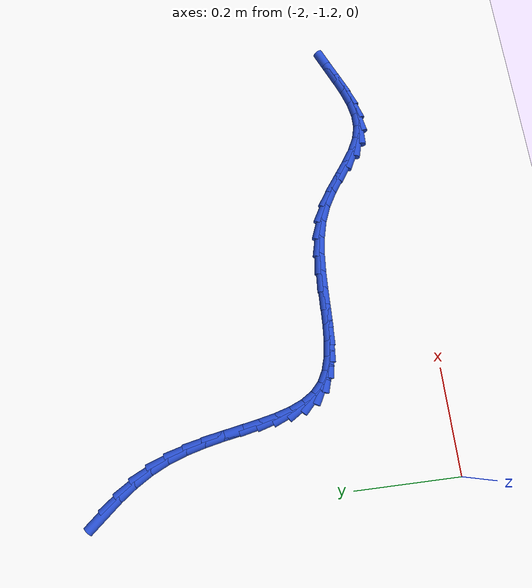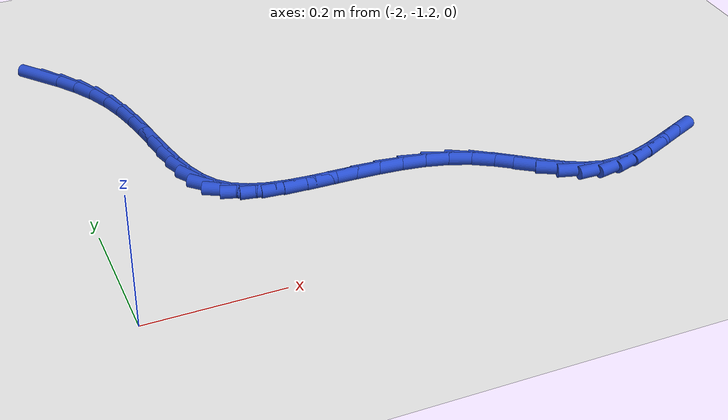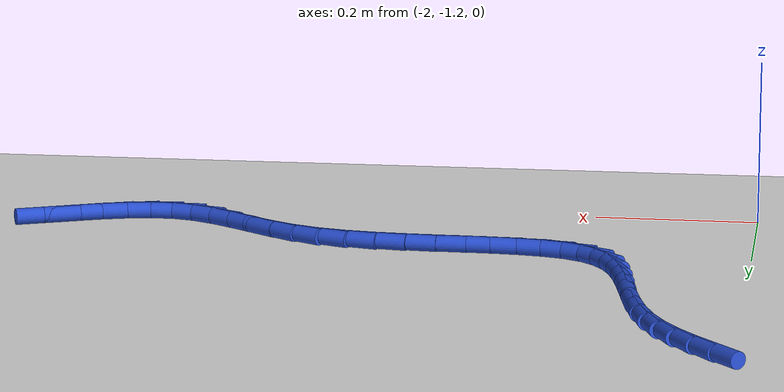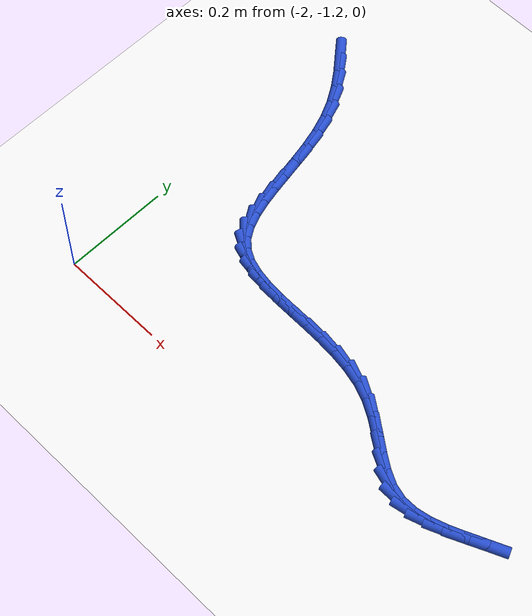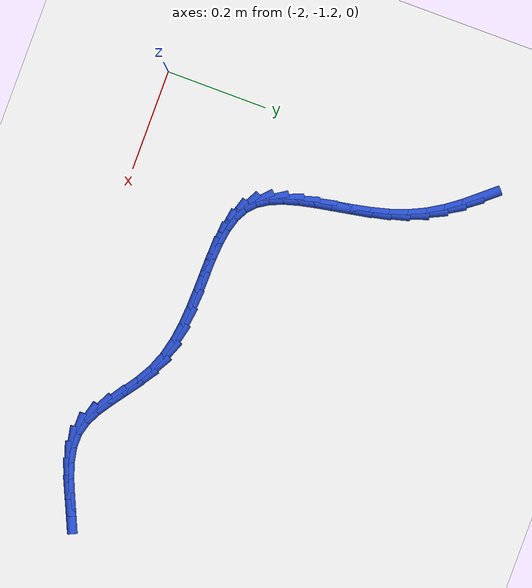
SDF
<sdf version="1.6">
 <world name="default">
  <model name="ground_plane">
   <static>1</static>
   <link name="link">
    <collision name="collision">
     <geometry><plane><normal>0 0 1</normal><size>100 100</size></plane></geometry>
     <surface><friction><ode><mu>100</mu><mu2>50</mu2></ode></friction></surface>
    </collision>
    <visual name="visual">
     <cast_shadows>0</cast_shadows>
     <geometry><plane><normal>0 0 1</normal><size>100 100</size></plane></geometry>
     <material>
      <script><uri>file://media/materials/scripts/gazebo.material</uri><name>Gazebo/WhiteGlow</name></script>
     </material>
    </visual>
   </link>
  </model>
  <model name="line">
   <link name="link_130">
    <pose>-1.9802966200586152 -0.5491466870681517 0.01 0 1.57 -0.868888062633061</pose>
    <collision name="collision">
     <geometry><cylinder><radius>0.01</radius><length>0.08</length></cylinder></geometry>
    </collision>
    <visual name="visual">
     <material>
      <script><name>Gazebo/Blue</name><uri>file://media/materials/scripts/gazebo.material</uri></script>
     </material>
     <geometry><cylinder><radius>0.01</radius><length>0.08</length></cylinder></geometry>
    </visual>
   </link>
   <link name="link_131">
    <pose>-1.9568512307690193 -0.576874474604119 0.01 0 1.57 -0.9364145142015644</pose>
    <collision name="collision">
     <geometry><cylinder><radius>0.01</radius><length>0.08</length></cylinder></geometry>
    </collision>
    <visual name="visual">
     <material>
      <script><name>Gazebo/Blue</name><uri>file://media/materials/scripts/gazebo.material</uri></script>
     </material>
     <geometry><cylinder><radius>0.01</radius><length>0.08</length></cylinder></geometry>
    </visual>
   </link>
   <link name="link_132">
    <pose>-1.9353915545695248 -0.6060376858844282 0.01 0 1.57 -1.0235046562217855</pose>
    <collision name="collision">
     <geometry><cylinder><radius>0.01</radius><length>0.08</length></cylinder></geometry>
    </collision>
    <visual name="visual">
     <material>
      <script><name>Gazebo/Blue</name><uri>file://media/materials/scripts/gazebo.material</uri></script>
     </material>
     <geometry><cylinder><radius>0.01</radius><length>0.08</length></cylinder></geometry>
    </visual>
   </link>
   <link name="link_133">
    <pose>-1.9166152223252622 -0.636849623085372 0.01 0 1.57 -1.1301606144723841</pose>
    <collision name="collision">
     <geometry><cylinder><radius>0.01</radius><length>0.08</length></cylinder></geometry>
    </collision>
    <visual name="visual">
     <material>
      <script><name>Gazebo/Blue</name><uri>file://media/materials/scripts/gazebo.material</uri></script>
     </material>
     <geometry><cylinder><radius>0.01</radius><length>0.08</length></cylinder></geometry>
    </visual>
   </link>
   <link name="link_134">
    <pose>-1.9012103349908462 -0.6695177317492675 0.01 0 1.57 -1.23710192321371</pose>
    <collision name="collision">
     <geometry><cylinder><radius>0.01</radius><length>0.08</length></cylinder></geometry>
    </collision>
    <visual name="visual">
     <material>
      <script><name>Gazebo/Blue</name><uri>file://media/materials/scripts/gazebo.material</uri></script>
     </material>
     <geometry><cylinder><radius>0.01</radius><length>0.08</length></cylinder></geometry>
    </visual>
   </link>
   <link name="link_135">
    <pose>-1.88929231010955 -0.7038975131774695 0.01 0 1.57 -1.3164382587593846</pose>
    <collision name="collision">
     <geometry><cylinder><radius>0.01</radius><length>0.08</length></cylinder></geometry>
    </collision>
    <visual name="visual">
     <material>
      <script><name>Gazebo/Blue</name><uri>file://media/materials/scripts/gazebo.material</uri></script>
     </material>
     <geometry><cylinder><radius>0.01</radius><length>0.08</length></cylinder></geometry>
    </visual>
   </link>
   <link name="link_136">
    <pose>-1.8800883945109244 -0.7392986407994274 0.01 0 1.57 -1.367964119030951</pose>
    <collision name="collision">
     <geometry><cylinder><radius>0.01</radius><length>0.08</length></cylinder></geometry>
    </collision>
    <visual name="visual">
     <material>
      <script><name>Gazebo/Blue</name><uri>file://media/materials/scripts/gazebo.material</uri></script>
     </material>
     <geometry><cylinder><radius>0.01</radius><length>0.08</length></cylinder></geometry>
    </visual>
   </link>
   <link name="link_137">
    <pose>-1.872749373437437 -0.7749837983558826 0.01 0 1.57 -1.3932091756822518</pose>
    <collision name="collision">
     <geometry><cylinder><radius>0.01</radius><length>0.08</length></cylinder></geometry>
    </collision>
    <visual name="visual">
     <material>
      <script><name>Gazebo/Blue</name><uri>file://media/materials/scripts/gazebo.material</uri></script>
     </material>
     <geometry><cylinder><radius>0.01</radius><length>0.08</length></cylinder></geometry>
    </visual>
   </link>
   <link name="link_138">
    <pose>-1.8664260321315564 -0.8102156695875762 0.01 0 1.57 -1.3918655977846646</pose>
    <collision name="collision">
     <geometry><cylinder><radius>0.01</radius><length>0.08</length></cylinder></geometry>
    </collision>
    <visual name="visual">
     <material>
      <script><name>Gazebo/Blue</name><uri>file://media/materials/scripts/gazebo.material</uri></script>
     </material>
     <geometry><cylinder><radius>0.01</radius><length>0.08</length></cylinder></geometry>
    </visual>
   </link>
   <link name="link_139">
    <pose>-1.8602691558357518 -0.8442569382352502 0.01 0 1.57 -1.3609479995596978</pose>
    <collision name="collision">
     <geometry><cylinder><radius>0.01</radius><length>0.08</length></cylinder></geometry>
    </collision>
    <visual name="visual">
     <material>
      <script><name>Gazebo/Blue</name><uri>file://media/materials/scripts/gazebo.material</uri></script>
     </material>
     <geometry><cylinder><radius>0.01</radius><length>0.08</length></cylinder></geometry>
    </visual>
   </link>
   <link name="link_140">
    <pose>-1.8534295297924923 -0.8763702880396438 0.01 0 1.57 -1.2938206780855823</pose>
    <collision name="collision">
     <geometry><cylinder><radius>0.01</radius><length>0.08</length></cylinder></geometry>
    </collision>
    <visual name="visual">
     <material>
      <script><name>Gazebo/Blue</name><uri>file://media/materials/scripts/gazebo.material</uri></script>
     </material>
     <geometry><cylinder><radius>0.01</radius><length>0.08</length></cylinder></geometry>
    </visual>
   </link>
   <link name="link_141">
    <pose>-1.8450579392442465 -0.905818402741499 0.01 0 1.57 -1.1792663049357472</pose>
    <collision name="collision">
     <geometry><cylinder><radius>0.01</radius><length>0.08</length></cylinder></geometry>
    </collision>
    <visual name="visual">
     <material>
      <script><name>Gazebo/Blue</name><uri>file://media/materials/scripts/gazebo.material</uri></script>
     </material>
     <geometry><cylinder><radius>0.01</radius><length>0.08</length></cylinder></geometry>
    </visual>
   </link>
   <link name="link_142">
    <pose>-1.8343051694334833 -0.9318639660815571 0.01 0 1.57 -1.002665488838334</pose>
    <collision name="collision">
     <geometry><cylinder><radius>0.01</radius><length>0.08</length></cylinder></geometry>
    </collision>
    <visual name="visual">
     <material>
      <script><name>Gazebo/Blue</name><uri>file://media/materials/scripts/gazebo.material</uri></script>
     </material>
     <geometry><cylinder><radius>0.01</radius><length>0.08</length></cylinder></geometry>
    </visual>
   </link>
   <link name="link_143">
    <pose>-1.8203220056026699 -0.9537696618005587 0.01 0 1.57 -0.7563491229594571</pose>
    <collision name="collision">
     <geometry><cylinder><radius>0.01</radius><length>0.08</length></cylinder></geometry>
    </collision>
    <visual name="visual">
     <material>
      <script><name>Gazebo/Blue</name><uri>file://media/materials/scripts/gazebo.material</uri></script>
     </material>
     <geometry><cylinder><radius>0.01</radius><length>0.08</length></cylinder></geometry>
    </visual>
   </link>
   <link name="link_144">
    <pose>-1.8022660871292357 -0.97080589996272 0.01 0 1.57 -0.491701843074847</pose>
    <collision name="collision">
     <geometry><cylinder><radius>0.01</radius><length>0.08</length></cylinder></geometry>
    </collision>
    <visual name="visual">
     <material>
      <script><name>Gazebo/Blue</name><uri>file://media/materials/scripts/gazebo.material</uri></script>
     </material>
     <geometry><cylinder><radius>0.01</radius><length>0.08</length></cylinder></geometry>
    </visual>
   </link>
   <link name="link_145">
    <pose>-1.77981558123854 -0.9828298556369027 0.01 0 1.57 -0.29041845413460665</pose>
    <collision name="collision">
     <geometry><cylinder><radius>0.01</radius><length>0.08</length></cylinder></geometry>
    </collision>
    <visual name="visual">
     <material>
      <script><name>Gazebo/Blue</name><uri>file://media/materials/scripts/gazebo.material</uri></script>
     </material>
     <geometry><cylinder><radius>0.01</radius><length>0.08</length></cylinder></geometry>
    </visual>
   </link>
   <link name="link_146">
    <pose>-1.7535255050238565 -0.99068713288547 0.01 0 1.57 -0.1557680482634059</pose>
    <collision name="collision">
     <geometry><cylinder><radius>0.01</radius><length>0.08</length></cylinder></geometry>
    </collision>
    <visual name="visual">
     <material>
      <script><name>Gazebo/Blue</name><uri>file://media/materials/scripts/gazebo.material</uri></script>
     </material>
     <geometry><cylinder><radius>0.01</radius><length>0.08</length></cylinder></geometry>
    </visual>
   </link>
   <link name="link_147">
    <pose>-1.7240351274062122 -0.995318308641686 0.01 0 1.57 -0.07305378776285965</pose>
    <collision name="collision">
     <geometry><cylinder><radius>0.01</radius><length>0.08</length></cylinder></geometry>
    </collision>
    <visual name="visual">
     <material>
      <script><name>Gazebo/Blue</name><uri>file://media/materials/scripts/gazebo.material</uri></script>
     </material>
     <geometry><cylinder><radius>0.01</radius><length>0.08</length></cylinder></geometry>
    </visual>
   </link>
   <link name="link_148">
    <pose>-1.6919837173066314 -0.997663959838814 0.01 0 1.57 -0.029447184289009293</pose>
    <collision name="collision">
     <geometry><cylinder><radius>0.01</radius><length>0.08</length></cylinder></geometry>
    </collision>
    <visual name="visual">
     <material>
      <script><name>Gazebo/Blue</name><uri>file://media/materials/scripts/gazebo.material</uri></script>
     </material>
     <geometry><cylinder><radius>0.01</radius><length>0.08</length></cylinder></geometry>
    </visual>
   </link>
   <link name="link_149">
    <pose>-1.6580105436461423 -0.9986646634101178 0.01 0 1.57 -0.016912912071802965</pose>
    <collision name="collision">
     <geometry><cylinder><radius>0.01</radius><length>0.08</length></cylinder></geometry>
    </collision>
    <visual name="visual">
     <material>
      <script><name>Gazebo/Blue</name><uri>file://media/materials/scripts/gazebo.material</uri></script>
     </material>
     <geometry><cylinder><radius>0.01</radius><length>0.08</length></cylinder></geometry>
    </visual>
   </link>
   <link name="link_150">
    <pose>-1.6227548753457701 -0.9992609962888621 0.01 0 1.57 -0.031537562486859336</pose>
    <collision name="collision">
     <geometry><cylinder><radius>0.01</radius><length>0.08</length></cylinder></geometry>
    </collision>
    <visual name="visual">
     <material>
      <script><name>Gazebo/Blue</name><uri>file://media/materials/scripts/gazebo.material</uri></script>
     </material>
     <geometry><cylinder><radius>0.01</radius><length>0.08</length></cylinder></geometry>
    </visual>
   </link>
   <link name="link_151">
    <pose>-1.5868559813265397 -1.0003935354083096 0.01 0 1.57 -0.07254974468590825</pose>
    <collision name="collision">
     <geometry><cylinder><radius>0.01</radius><length>0.08</length></cylinder></geometry>
    </collision>
    <visual name="visual">
     <material>
      <script><name>Gazebo/Blue</name><uri>file://media/materials/scripts/gazebo.material</uri></script>
     </material>
     <geometry><cylinder><radius>0.01</radius><length>0.08</length></cylinder></geometry>
    </visual>
   </link>
   <link name="link_152">
    <pose>-1.5509531305094773 -1.0030028577017247 0.01 0 1.57 -0.14157644300487252</pose>
    <collision name="collision">
     <geometry><cylinder><radius>0.01</radius><length>0.08</length></cylinder></geometry>
    </collision>
    <visual name="visual">
     <material>
      <script><name>Gazebo/Blue</name><uri>file://media/materials/scripts/gazebo.material</uri></script>
     </material>
     <geometry><cylinder><radius>0.01</radius><length>0.08</length></cylinder></geometry>
    </visual>
   </link>
   <link name="link_153">
    <pose>-1.515685591815611 -1.0080295401023718 0.01 0 1.57 -0.2418303563946308</pose>
    <collision name="collision">
     <geometry><cylinder><radius>0.01</radius><length>0.08</length></cylinder></geometry>
    </collision>
    <visual name="visual">
     <material>
      <script><name>Gazebo/Blue</name><uri>file://media/materials/scripts/gazebo.material</uri></script>
     </material>
     <geometry><cylinder><radius>0.01</radius><length>0.08</length></cylinder></geometry>
    </visual>
   </link>
   <link name="link_154">
    <pose>-1.4816926341659644 -1.0164141595435137 0.01 0 1.57 -0.3763910196395819</pose>
    <collision name="collision">
     <geometry><cylinder><radius>0.01</radius><length>0.08</length></cylinder></geometry>
    </collision>
    <visual name="visual">
     <material>
      <script><name>Gazebo/Blue</name><uri>file://media/materials/scripts/gazebo.material</uri></script>
     </material>
     <geometry><cylinder><radius>0.01</radius><length>0.08</length></cylinder></geometry>
    </visual>
   </link>
   <link name="link_155">
    <pose>-1.4496120338953187 -1.029093503637172 0.01 0 1.57 -0.5182923545185444</pose>
    <collision name="collision">
     <geometry><cylinder><radius>0.01</radius><length>0.08</length></cylinder></geometry>
    </collision>
    <visual name="visual">
     <material>
      <script><name>Gazebo/Blue</name><uri>file://media/materials/scripts/gazebo.material</uri></script>
     </material>
     <geometry><cylinder><radius>0.01</radius><length>0.08</length></cylinder></geometry>
    </visual>
   </link>
   <link name="link_156">
    <pose>-1.4197374978723287 -1.0461308495093284 0.01 0 1.57 -0.6050913153835491</pose>
    <collision name="collision">
     <geometry><cylinder><radius>0.01</radius><length>0.08</length></cylinder></geometry>
    </collision>
    <visual name="visual">
     <material>
      <script><name>Gazebo/Blue</name><uri>file://media/materials/scripts/gazebo.material</uri></script>
     </material>
     <geometry><cylinder><radius>0.01</radius><length>0.08</length></cylinder></geometry>
    </visual>
   </link>
   <link name="link_157">
    <pose>-1.3915810286249315 -1.0656049130103271 0.01 0 1.57 -0.6301013167450306</pose>
    <collision name="collision">
     <geometry><cylinder><radius>0.01</radius><length>0.08</length></cylinder></geometry>
    </collision>
    <visual name="visual">
     <material>
      <script><name>Gazebo/Blue</name><uri>file://media/materials/scripts/gazebo.material</uri></script>
     </material>
     <geometry><cylinder><radius>0.01</radius><length>0.08</length></cylinder></geometry>
    </visual>
   </link>
   <link name="link_158">
    <pose>-1.3645466482504673 -1.0853202733765466 0.01 0 1.57 -0.5903248671606487</pose>
    <collision name="collision">
     <geometry><cylinder><radius>0.01</radius><length>0.08</length></cylinder></geometry>
    </collision>
    <visual name="visual">
     <material>
      <script><name>Gazebo/Blue</name><uri>file://media/materials/scripts/gazebo.material</uri></script>
     </material>
     <geometry><cylinder><radius>0.01</radius><length>0.08</length></cylinder></geometry>
    </visual>
   </link>
   <link name="link_159">
    <pose>-1.3380383788462755 -1.1030815098443645 0.01 0 1.57 -0.4733113331220648</pose>
    <collision name="collision">
     <geometry><cylinder><radius>0.01</radius><length>0.08</length></cylinder></geometry>
    </collision>
    <visual name="visual">
     <material>
      <script><name>Gazebo/Blue</name><uri>file://media/materials/scripts/gazebo.material</uri></script>
     </material>
     <geometry><cylinder><radius>0.01</radius><length>0.08</length></cylinder></geometry>
    </visual>
   </link>
   <link name="link_160">
    <pose>-1.3114602425096966 -1.1166932016501596 0.01 0 1.57 -0.26160390263862354</pose>
    <collision name="collision">
     <geometry><cylinder><radius>0.01</radius><length>0.08</length></cylinder></geometry>
    </collision>
    <visual name="visual">
     <material>
      <script><name>Gazebo/Blue</name><uri>file://media/materials/scripts/gazebo.material</uri></script>
     </material>
     <geometry><cylinder><radius>0.01</radius><length>0.08</length></cylinder></geometry>
    </visual>
   </link>
   <link name="link_161">
    <pose>-1.2842211860537551 -1.1239861779919547 0.01 0 1.57 -0.007108148456988458</pose>
    <collision name="collision">
     <geometry><cylinder><radius>0.01</radius><length>0.08</length></cylinder></geometry>
    </collision>
    <visual name="visual">
     <material>
      <script><name>Gazebo/Blue</name><uri>file://media/materials/scripts/gazebo.material</uri></script>
     </material>
     <geometry><cylinder><radius>0.01</radius><length>0.08</length></cylinder></geometry>
    </visual>
   </link>
   <link name="link_162">
    <pose>-1.2559919772061718 -1.1241868387787919 0.01 0 1.57 0.18970847918821415</pose>
    <collision name="collision">
     <geometry><cylinder><radius>0.01</radius><length>0.08</length></cylinder></geometry>
    </collision>
    <visual name="visual">
     <material>
      <script><name>Gazebo/Blue</name><uri>file://media/materials/scripts/gazebo.material</uri></script>
     </material>
     <geometry><cylinder><radius>0.01</radius><length>0.08</length></cylinder></geometry>
    </visual>
   </link>
   <link name="link_163">
    <pose>-1.2268309501653671 -1.1185874097751838 0.01 0 1.57 0.3199322732963062</pose>
    <collision name="collision">
     <geometry><cylinder><radius>0.01</radius><length>0.08</length></cylinder></geometry>
    </collision>
    <visual name="visual">
     <material>
      <script><name>Gazebo/Blue</name><uri>file://media/materials/scripts/gazebo.material</uri></script>
     </material>
     <geometry><cylinder><radius>0.01</radius><length>0.08</length></cylinder></geometry>
    </visual>
   </link>
   <link name="link_164">
    <pose>-1.1968277321468703 -1.108646916323842 0.01 0 1.57 0.3950023052116155</pose>
    <collision name="collision">
     <geometry><cylinder><radius>0.01</radius><length>0.08</length></cylinder></geometry>
    </collision>
    <visual name="visual">
     <material>
      <script><name>Gazebo/Blue</name><uri>file://media/materials/scripts/gazebo.material</uri></script>
     </material>
     <geometry><cylinder><radius>0.01</radius><length>0.08</length></cylinder></geometry>
    </visual>
   </link>
   <link name="link_165">
    <pose>-1.166071950366209 -1.0958243837674764 0.01 0 1.57 0.4256856736965409</pose>
    <collision name="collision">
     <geometry><cylinder><radius>0.01</radius><length>0.08</length></cylinder></geometry>
    </collision>
    <visual name="visual">
     <material>
      <script><name>Gazebo/Blue</name><uri>file://media/materials/scripts/gazebo.material</uri></script>
     </material>
     <geometry><cylinder><radius>0.01</radius><length>0.08</length></cylinder></geometry>
    </visual>
   </link>
   <link name="link_166">
    <pose>-1.1346532320389133 -1.0815788374487998 0.01 0 1.57 0.4179856230508563</pose>
    <collision name="collision">
     <geometry><cylinder><radius>0.01</radius><length>0.08</length></cylinder></geometry>
    </collision>
    <visual name="visual">
     <material>
      <script><name>Gazebo/Blue</name><uri>file://media/materials/scripts/gazebo.material</uri></script>
     </material>
     <geometry><cylinder><radius>0.01</radius><length>0.08</length></cylinder></geometry>
    </visual>
   </link>
  </model>
 </world>
</sdf>
